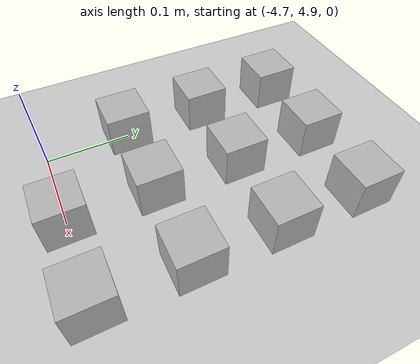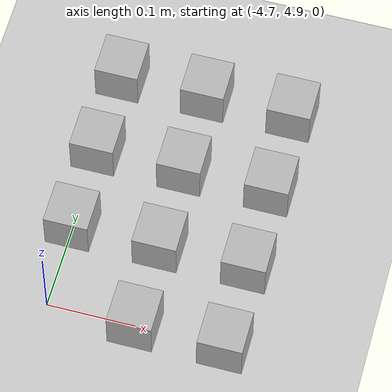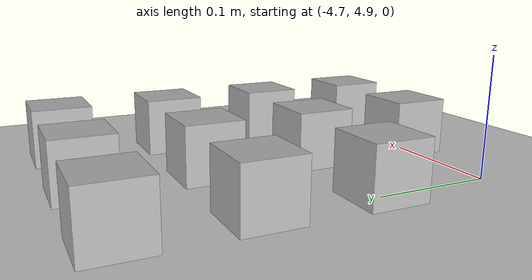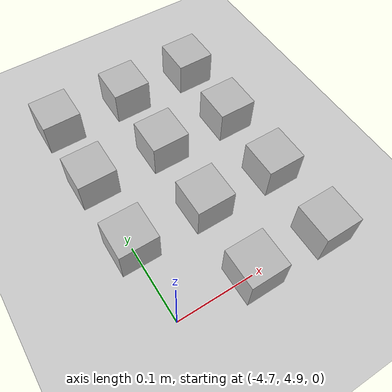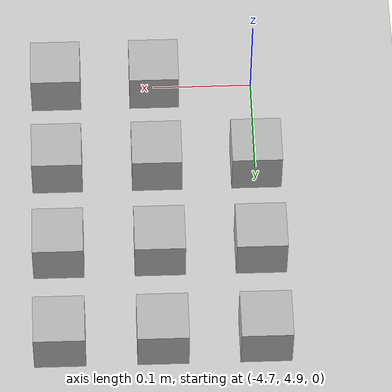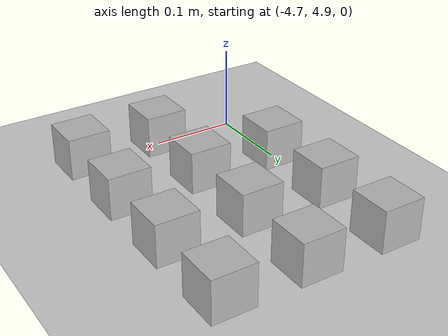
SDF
<sdf version="1.6">
 <world name="default">
  <model name="ground_plane">
   <static>1</static>
   <link name="link">
    <collision name="collision">
     <geometry><plane><normal>0 0 1</normal><size>100 100</size></plane></geometry>
     <surface><friction><ode><mu>100</mu><mu2>50</mu2></ode></friction></surface>
    </collision>
    <visual name="visual">
     <cast_shadows>0</cast_shadows>
     <geometry><plane><normal>0 0 1</normal><size>100 100</size></plane></geometry>
     <material>
      <script><uri>file://media/materials/scripts/gazebo.material</uri><name>Gazebo/Grey</name></script>
     </material>
    </visual>
   </link>
  </model>
  <model name="at38">
   <static>0</static>
   <link name="link">
    <inertial>
     <mass>0.01</mass>
     <inertia><ixx>4e-05</ixx><ixy>0</ixy><ixz>0</ixz><iyy>4e-05</iyy><iyz>0</iyz><izz>4e-05</izz></inertia>
    </inertial>
    <visual name="visual">
     <geometry><box><size>0.05 0.05 0.05</size></box></geometry>
     <material>
      <script>
       <uri>model://at0/materials/scripts</uri>
       <uri>model://at0/materials/textures</uri>
       <name>at0/Diffuse</name>
      </script>
     </material>
    </visual>
    <collision name="collision">
     <geometry><box><size>0.05 0.05 0.05</size></box></geometry>
     <surface><friction><ode><mu>0.8</mu><mu2>0.7</mu2></ode></friction></surface>
    </collision>
   </link>
   <pose>-4.6 4.9 0.025 0 -0 0</pose>
  </model>
  <model name="at39">
   <static>0</static>
   <link name="link">
    <inertial>
     <mass>0.01</mass>
     <inertia><ixx>4e-05</ixx><ixy>0</ixy><ixz>0</ixz><iyy>4e-05</iyy><iyz>0</iyz><izz>4e-05</izz></inertia>
    </inertial>
    <visual name="visual">
     <geometry><box><size>0.05 0.05 0.05</size></box></geometry>
     <material>
      <script>
       <uri>model://at0/materials/scripts</uri>
       <uri>model://at0/materials/textures</uri>
       <name>at0/Diffuse</name>
      </script>
     </material>
    </visual>
    <collision name="collision">
     <geometry><box><size>0.05 0.05 0.05</size></box></geometry>
     <surface><friction><ode><mu>0.8</mu><mu2>0.7</mu2></ode></friction></surface>
    </collision>
   </link>
   <pose>-4.5 4.9 0.025 0 -0 0</pose>
  </model>
  <model name="at45">
   <static>0</static>
   <link name="link">
    <inertial>
     <mass>0.01</mass>
     <inertia><ixx>4e-05</ixx><ixy>0</ixy><ixz>0</ixz><iyy>4e-05</iyy><iyz>0</iyz><izz>4e-05</izz></inertia>
    </inertial>
    <visual name="visual">
     <geometry><box><size>0.05 0.05 0.05</size></box></geometry>
     <material>
      <script>
       <uri>model://at0/materials/scripts</uri>
       <uri>model://at0/materials/textures</uri>
       <name>at0/Diffuse</name>
      </script>
     </material>
    </visual>
    <collision name="collision">
     <geometry><box><size>0.05 0.05 0.05</size></box></geometry>
     <surface><friction><ode><mu>0.8</mu><mu2>0.7</mu2></ode></friction></surface>
    </collision>
   </link>
   <pose>-4.7 5.0 0.025 0 -0 0</pose>
  </model>
  <model name="at46">
   <static>0</static>
   <link name="link">
    <inertial>
     <mass>0.01</mass>
     <inertia><ixx>4e-05</ixx><ixy>0</ixy><ixz>0</ixz><iyy>4e-05</iyy><iyz>0</iyz><izz>4e-05</izz></inertia>
    </inertial>
    <visual name="visual">
     <geometry><box><size>0.05 0.05 0.05</size></box></geometry>
     <material>
      <script>
       <uri>model://at0/materials/scripts</uri>
       <uri>model://at0/materials/textures</uri>
       <name>at0/Diffuse</name>
      </script>
     </material>
    </visual>
    <collision name="collision">
     <geometry><box><size>0.05 0.05 0.05</size></box></geometry>
     <surface><friction><ode><mu>0.8</mu><mu2>0.7</mu2></ode></friction></surface>
    </collision>
   </link>
   <pose>-4.6 5.0 0.025 0 -0 0</pose>
  </model>
  <model name="at47">
   <static>0</static>
   <link name="link">
    <inertial>
     <mass>0.01</mass>
     <inertia><ixx>4e-05</ixx><ixy>0</ixy><ixz>0</ixz><iyy>4e-05</iyy><iyz>0</iyz><izz>4e-05</izz></inertia>
    </inertial>
    <visual name="visual">
     <geometry><box><size>0.05 0.05 0.05</size></box></geometry>
     <material>
      <script>
       <uri>model://at0/materials/scripts</uri>
       <uri>model://at0/materials/textures</uri>
       <name>at0/Diffuse</name>
      </script>
     </material>
    </visual>
    <collision name="collision">
     <geometry><box><size>0.05 0.05 0.05</size></box></geometry>
     <surface><friction><ode><mu>0.8</mu><mu2>0.7</mu2></ode></friction></surface>
    </collision>
   </link>
   <pose>-4.5 5.0 0.025 0 -0 0</pose>
  </model>
  <model name="at53">
   <static>0</static>
   <link name="link">
    <inertial>
     <mass>0.01</mass>
     <inertia><ixx>4e-05</ixx><ixy>0</ixy><ixz>0</ixz><iyy>4e-05</iyy><iyz>0</iyz><izz>4e-05</izz></inertia>
    </inertial>
    <visual name="visual">
     <geometry><box><size>0.05 0.05 0.05</size></box></geometry>
     <material>
      <script>
       <uri>model://at0/materials/scripts</uri>
       <uri>model://at0/materials/textures</uri>
       <name>at0/Diffuse</name>
      </script>
     </material>
    </visual>
    <collision name="collision">
     <geometry><box><size>0.05 0.05 0.05</size></box></geometry>
     <surface><friction><ode><mu>0.8</mu><mu2>0.7</mu2></ode></friction></surface>
    </collision>
   </link>
   <pose>-4.7 5.1 0.025 0 -0 0</pose>
  </model>
  <model name="at54">
   <static>0</static>
   <link name="link">
    <inertial>
     <mass>0.01</mass>
     <inertia><ixx>4e-05</ixx><ixy>0</ixy><ixz>0</ixz><iyy>4e-05</iyy><iyz>0</iyz><izz>4e-05</izz></inertia>
    </inertial>
    <visual name="visual">
     <geometry><box><size>0.05 0.05 0.05</size></box></geometry>
     <material>
      <script>
       <uri>model://at0/materials/scripts</uri>
       <uri>model://at0/materials/textures</uri>
       <name>at0/Diffuse</name>
      </script>
     </material>
    </visual>
    <collision name="collision">
     <geometry><box><size>0.05 0.05 0.05</size></box></geometry>
     <surface><friction><ode><mu>0.8</mu><mu2>0.7</mu2></ode></friction></surface>
    </collision>
   </link>
   <pose>-4.6 5.1 0.025 0 -0 0</pose>
  </model>
  <model name="at55">
   <static>0</static>
   <link name="link">
    <inertial>
     <mass>0.01</mass>
     <inertia><ixx>4e-05</ixx><ixy>0</ixy><ixz>0</ixz><iyy>4e-05</iyy><iyz>0</iyz><izz>4e-05</izz></inertia>
    </inertial>
    <visual name="visual">
     <geometry><box><size>0.05 0.05 0.05</size></box></geometry>
     <material>
      <script>
       <uri>model://at0/materials/scripts</uri>
       <uri>model://at0/materials/textures</uri>
       <name>at0/Diffuse</name>
      </script>
     </material>
    </visual>
    <collision name="collision">
     <geometry><box><size>0.05 0.05 0.05</size></box></geometry>
     <surface><friction><ode><mu>0.8</mu><mu2>0.7</mu2></ode></friction></surface>
    </collision>
   </link>
   <pose>-4.5 5.1 0.025 0 -0 0</pose>
  </model>
  <model name="at61">
   <static>0</static>
   <link name="link">
    <inertial>
     <mass>0.01</mass>
     <inertia><ixx>4e-05</ixx><ixy>0</ixy><ixz>0</ixz><iyy>4e-05</iyy><iyz>0</iyz><izz>4e-05</izz></inertia>
    </inertial>
    <visual name="visual">
     <geometry><box><size>0.05 0.05 0.05</size></box></geometry>
     <material>
      <script>
       <uri>model://at0/materials/scripts</uri>
       <uri>model://at0/materials/textures</uri>
       <name>at0/Diffuse</name>
      </script>
     </material>
    </visual>
    <collision name="collision">
     <geometry><box><size>0.05 0.05 0.05</size></box></geometry>
     <surface><friction><ode><mu>0.8</mu><mu2>0.7</mu2></ode></friction></surface>
    </collision>
   </link>
   <pose>-4.7 5.2 0.025 0 -0 0</pose>
  </model>
  <model name="at62">
   <static>0</static>
   <link name="link">
    <inertial>
     <mass>0.01</mass>
     <inertia><ixx>4e-05</ixx><ixy>0</ixy><ixz>0</ixz><iyy>4e-05</iyy><iyz>0</iyz><izz>4e-05</izz></inertia>
    </inertial>
    <visual name="visual">
     <geometry><box><size>0.05 0.05 0.05</size></box></geometry>
     <material>
      <script>
       <uri>model://at0/materials/scripts</uri>
       <uri>model://at0/materials/textures</uri>
       <name>at0/Diffuse</name>
      </script>
     </material>
    </visual>
    <collision name="collision">
     <geometry><box><size>0.05 0.05 0.05</size></box></geometry>
     <surface><friction><ode><mu>0.8</mu><mu2>0.7</mu2></ode></friction></surface>
    </collision>
   </link>
   <pose>-4.6 5.2 0.025 0 -0 0</pose>
  </model>
  <model name="at63">
   <static>0</static>
   <link name="link">
    <inertial>
     <mass>0.01</mass>
     <inertia><ixx>4e-05</ixx><ixy>0</ixy><ixz>0</ixz><iyy>4e-05</iyy><iyz>0</iyz><izz>4e-05</izz></inertia>
    </inertial>
    <visual name="visual">
     <geometry><box><size>0.05 0.05 0.05</size></box></geometry>
     <material>
      <script>
       <uri>model://at0/materials/scripts</uri>
       <uri>model://at0/materials/textures</uri>
       <name>at0/Diffuse</name>
      </script>
     </material>
    </visual>
    <collision name="collision">
     <geometry><box><size>0.05 0.05 0.05</size></box></geometry>
     <surface><friction><ode><mu>0.8</mu><mu2>0.7</mu2></ode></friction></surface>
    </collision>
   </link>
   <pose>-4.5 5.2 0.025 0 -0 0</pose>
  </model>
 </world>
</sdf>
